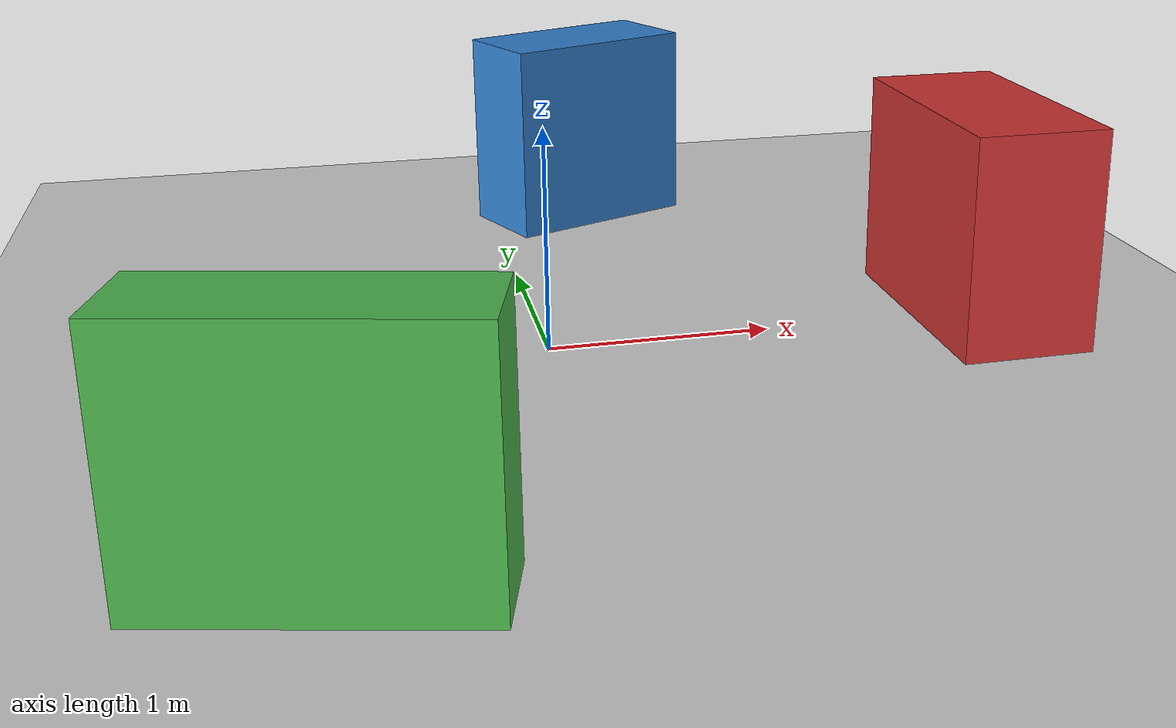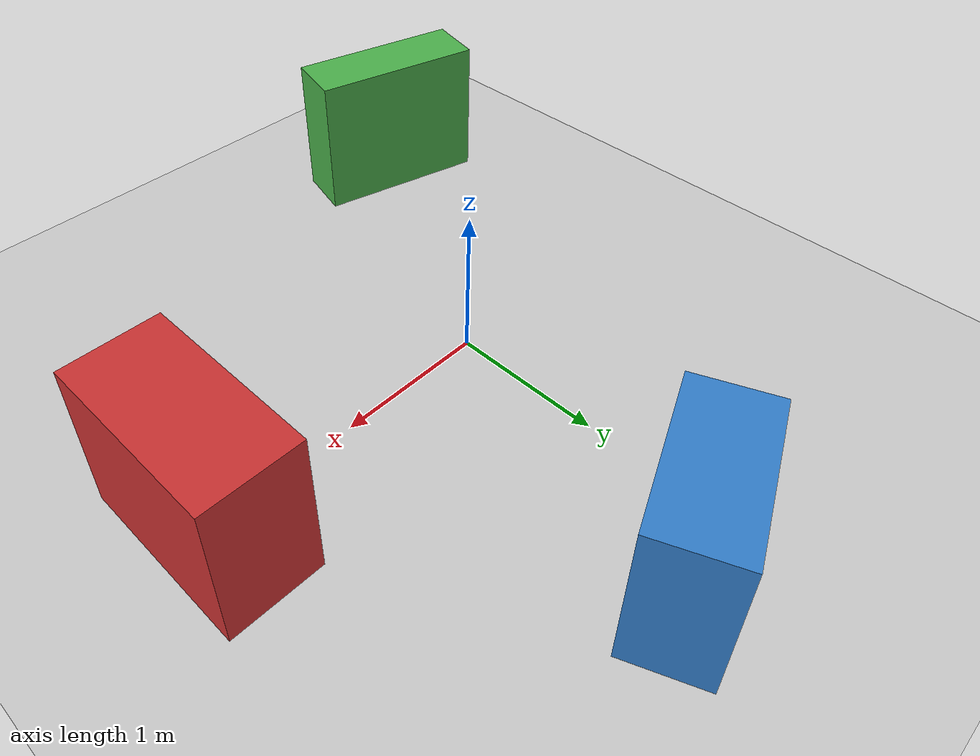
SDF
<?xml version="1.0" ?>
<sdf version="1.6">
  <world name="simple_obstacles">
    <include>
      <uri>model://sun</uri>
    </include>

    <include>
      <uri>model://ground_plane</uri>
    </include>

    <model name="box_obstacle_front">
      <static>true</static>
      <pose>2.0 0.0 0.5 0 0 0</pose>
      <link name="link">
        <collision name="collision">
          <geometry>
            <box>
              <size>0.6 1.2 1.0</size>
            </box>
          </geometry>
        </collision>
        <visual name="visual">
          <geometry>
            <box>
              <size>0.6 1.2 1.0</size>
            </box>
          </geometry>
          <material>
            <ambient>0.8 0.2 0.2 1</ambient>
            <diffuse>0.8 0.2 0.2 1</diffuse>
          </material>
        </visual>
      </link>
    </model>

    <model name="box_obstacle_left">
      <static>true</static>
      <pose>0.5 2.0 0.5 0 0 0.4</pose>
      <link name="link">
        <collision name="collision">
          <geometry>
            <box>
              <size>1.0 0.5 1.0</size>
            </box>
          </geometry>
        </collision>
        <visual name="visual">
          <geometry>
            <box>
              <size>1.0 0.5 1.0</size>
            </box>
          </geometry>
          <material>
            <ambient>0.2 0.5 0.8 1</ambient>
            <diffuse>0.2 0.5 0.8 1</diffuse>
          </material>
        </visual>
      </link>
    </model>

    <model name="box_obstacle_right">
      <static>true</static>
      <pose>-1.0 -1.8 0.5 0 0 -0.25</pose>
      <link name="link">
        <collision name="collision">
          <geometry>
            <box>
              <size>1.2 0.4 1.0</size>
            </box>
          </geometry>
        </collision>
        <visual name="visual">
          <geometry>
            <box>
              <size>1.2 0.4 1.0</size>
            </box>
          </geometry>
          <material>
            <ambient>0.3 0.7 0.3 1</ambient>
            <diffuse>0.3 0.7 0.3 1</diffuse>
          </material>
        </visual>
      </link>
    </model>
  </world>
</sdf>
